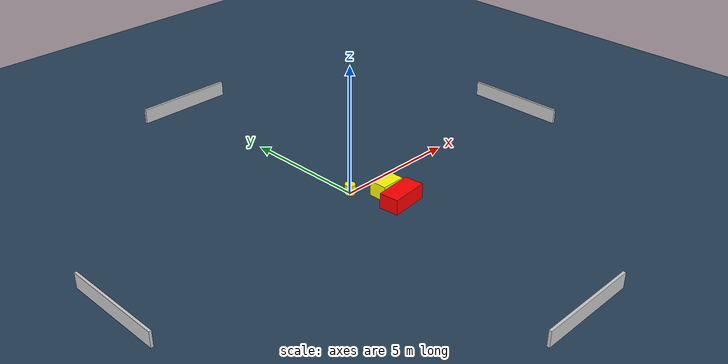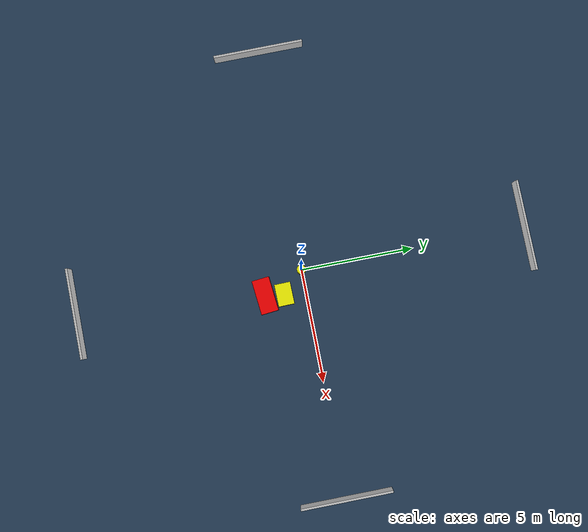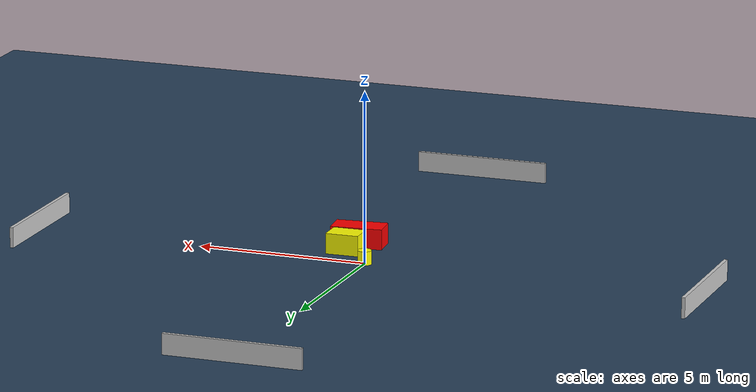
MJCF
<?xml version="1.0" ?>
<mujoco model="generated_environment">
  <option timestep="0.01" integrator="RK4" cone="elliptic"/>
  <default>
    <geom density="1"/>
  </default>
  <asset>
    <texture builtin="gradient" height="3072" name="skybox" rgb1="0.3 0.5 0.7" rgb2="0 0 0" type="skybox" width="512"/>
    <texture builtin="checker" height="300" name="groundplane" rgb1="0.2 0.3 0.4" rgb2="0.1 0.2 0.3" type="2d" width="300"/>
    <material name="groundplane" reflectance="0.2" texrepeat="5 5" texture="groundplane"/>
  </asset>
  <worldbody>
    <light dir="0 0 -1" directional="true" pos="0 0 1.5"/>
    <geom condim="3" friction="0.5 0.005 0.001" material="groundplane" name="floor" pos="0 0 0" size="0 0 0.05" type="plane"/>
    <body name="walls">
      <geom name="wall_1" condim="4" pos="-10.0 0.0 0.3" rgba="0.800000011920929 0.800000011920929 0.800000011920929 1.0" size="0.05 2.0 0.3" type="box"/>
      <geom name="wall_2" condim="4" pos="10.0 0.0 0.3" rgba="0.800000011920929 0.800000011920929 0.800000011920929 1.0" size="0.05 2.0 0.3" type="box"/>
      <geom name="wall_3" condim="4" pos="0.0 -10.0 0.3" rgba="0.800000011920929 0.800000011920929 0.800000011920929 1.0" size="2.0 0.05 0.3" type="box"/>
      <geom name="wall_4" condim="4" pos="0.0 10.0 0.3" rgba="0.800000011920929 0.800000011920929 0.800000011920929 1.0" size="2.0 0.05 0.3" type="box"/>
    </body>
    <body name="robot">
      <joint name="joint_x" type="slide" pos="0 0 0" axis="1 0 0"/>
      <joint name="joint_y" type="slide" pos="0 0 0" axis="0 1 0"/>
      <geom name="robot" type="cylinder" pos="0.0 0.0 0.2" size="0.2 0.2 0.0" mass="5.0" friction="1.0 0.005 0.0001" condim="4" rgba="1.0 1.0 0.0 1.0"/>
    </body>
    <body name="obstacle_1_movable">
      <geom name="obstacle_1_movable" condim="4" pos="0.9253720048745495 -0.9335103513817135 0.3" euler="0 0 90.95975589929066" friction="0.0 0.005 0.001" rgba="1.0 1.0 0.0 1.0" size="0.34900535477954564 0.48219809984851025 0.3" type="box" mass="0.1"/>
      <joint type="free"/>
    </body>
    <body name="obstacle_2_static">
      <geom name="obstacle_2_static" condim="4" pos="0.827623437367981 -1.7622013945266688 0.3" euler="0 0 95.55759158142703" friction="0.0 0.005 0.001" rgba="1.0 0.0 0.0 1.0" size="0.3813276185867328 0.7559804966084553 0.3" type="box"/>
    </body>
  </worldbody>
  <actuator>
    <motor name="actuator_x" joint="joint_x" gear="1" ctrlrange="-1 1"/>
    <motor name="actuator_y" joint="joint_y" gear="1" ctrlrange="-1 1"/>
  </actuator>
</mujoco>
